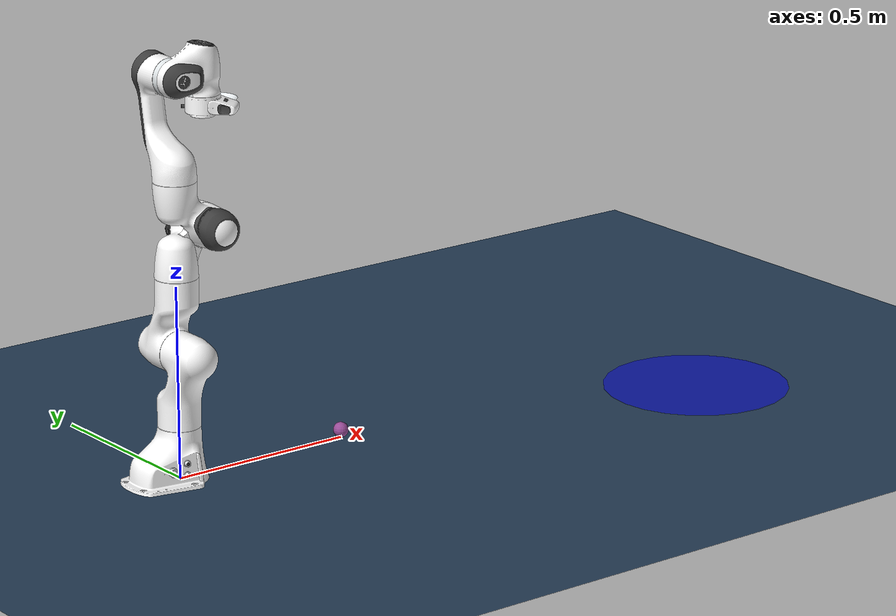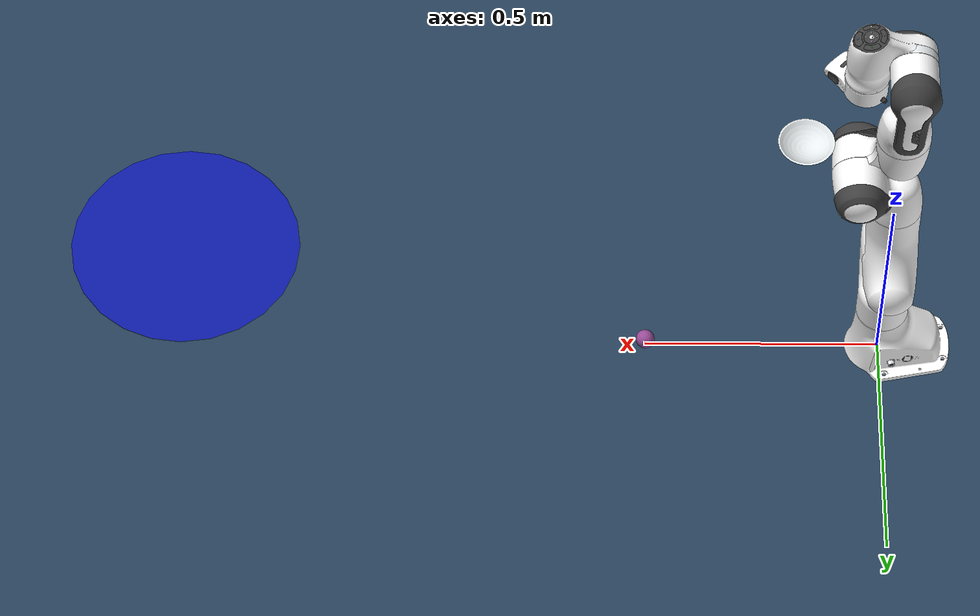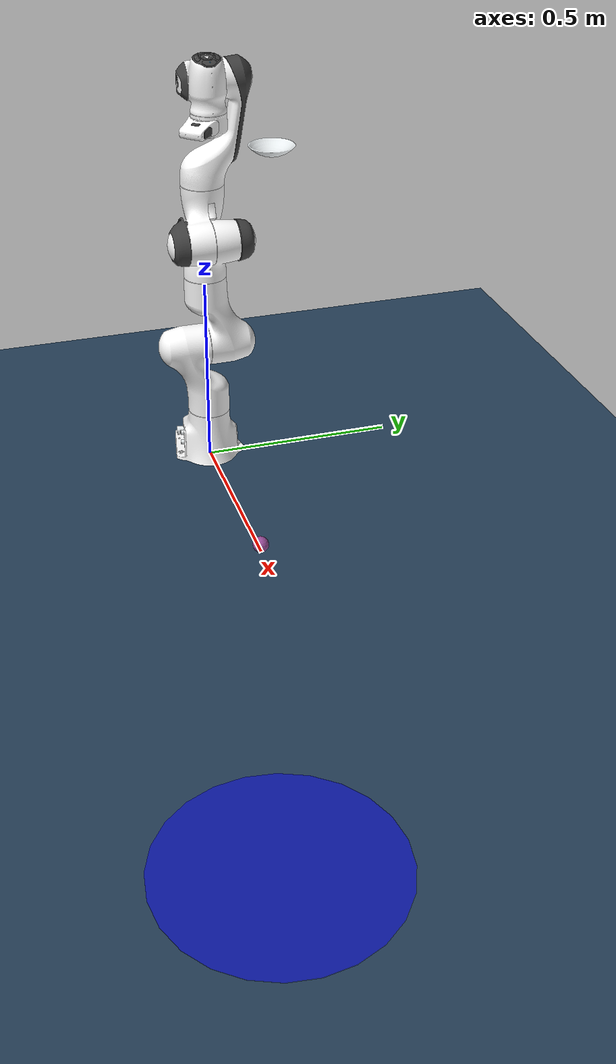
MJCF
<mujoco model="Arena">
  <include file="panda.xml"/>

  <option timestep=".002" noslip_iterations="5" noslip_tolerance="0"/>

  <statistic center="0.3 0 0.4" extent=".8"/>

  <visual>
    <headlight diffuse=".4 .4 .4" ambient=".5 .5 .5"/>
    <global azimuth="160" elevation="-20" offheight="128" offwidth="128"/>
    <quality offsamples="8"/>
  </visual>

  <asset>
    <texture type="skybox" builtin="gradient" rgb1=".3 .5 .7" rgb2="0 0 0" width="32" height="512"/>
    <texture name="grid" type="2d" builtin="checker" width="512" height="512" rgb1=".1 .2 .3" rgb2=".2 .3 .4"/>
    <material name="grid" texture="grid" texrepeat="2 2" texuniform="true" reflectance="0"/>
  </asset>

  <worldbody>
    <camera name="front" pos="1.3 0.0 0.7" quat="0.5963678 0.3799282 0.3799282 0.5963678" fovy="45"/>
    <light pos="0 0 3" dir="0 0 -1" diffuse="1 1 1" specular=".3 .3 .3"/>
    <light pos="0 -.5 .4" mode="targetbodycom" target="block" diffuse=".8 .8 .8" specular=".3 .3 .3"/>

    <geom name="floor" size="3 3 0.01" type="plane" material="grid"/>

    <body name="block" pos="0.5 0 .02">
      <freejoint name="block"/>
      <!-- Changed from box to sphere; size now a single radius -->
      <geom name="block" type="sphere" size=".02" mass="0.001" rgba=".6 .3 .6 1"/>
    </body>

    <body name="target" pos=".15 0 .5" quat="0 1 0 0" mocap="true">
      <geom name="target" type="box" size=".03 .03 .03" contype="0" conaffinity="0" rgba=".6 .3 .3 0"/>
    </body>

    <site name="visual_circle" type="cylinder"
          size="0.25 0.001"
          pos="1.5 -0.25 0"
          rgba="0 0 1 0.5"/>
  </worldbody>

  <sensor>
    <framepos name="block_pos" objtype="geom" objname="block"/>
    <framequat name="block_quat" objtype="geom" objname="block"/>
  </sensor>

  <contact>
    <pair name="block_floor" geom1="block" geom2="floor"/>
  </contact>
</mujoco>

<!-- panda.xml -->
<mujoco model="panda">
  <compiler angle="radian" autolimits="true"/>

  <default>
    <default class="panda">
      <joint armature="0.1" damping="1" axis="0 0 1" range="-2.8973 2.8973"/>
      <default class="panda/visual">
        <geom type="mesh" contype="0" conaffinity="0" group="2"/>
      </default>
      <default class="panda/collision">
        <geom type="mesh" group="3"/>
      </default>
      <site size="0.001" rgba="0.5 0.5 0.5 0.3" group="4"/>
    </default>
    <default class="2f85">
      <mesh scale="0.001 0.001 0.001"/>
      <general biastype="affine"/>
      <site type="sphere" rgba="0.9 0.9 0.9 1" size="0.005" group="4"/>
      <joint axis="1 0 0"/>
      <default class="driver">
        <joint range="0 0.8" armature="0.005" damping="0.1" solimplimit="0.95 0.99 0.001" solreflimit="0.005 1"/>
      </default>
      <default class="follower">
        <joint range="-0.872664 0.872664" pos="0 -0.018 0.0065" solimplimit="0.95 0.99 0.001" solreflimit="0.005 1"/>
      </default>
      <default class="spring_link">
        <joint range="-0.29670597283 0.8" stiffness="0.05" springref="2.62" damping="0.00125"/>
      </default>
      <default class="coupler">
        <joint range="-1.57 0" solimplimit="0.95 0.99 0.001" solreflimit="0.005 1"/>
      </default>
      <default class="2f85/visual">
        <geom type="mesh" contype="0" conaffinity="0" group="2"/>
      </default>
      <default class="2f85/collision">
        <geom type="mesh" group="3"/>
        <default class="pad_box1">
          <geom mass="0" type="box" pos="0 -0.0026 0.028125" size="0.011 0.004 0.009375" friction="0.7"
            solimp="0.95 0.99 0.001" solref="0.004 1" priority="1" rgba="0.55 0.55 0.55 1"/>
        </default>
        <default class="pad_box2">
          <geom mass="0" type="box" pos="0 -0.0026 0.009375" size="0.011 0.004 0.009375" friction="0.6"
            solimp="0.95 0.99 0.001" solref="0.004 1" priority="1" rgba="0.45 0.45 0.45 1"/>
        </default>
      </default>
    </default>
  </default>

  <asset>
    <material name="white" rgba="1 1 1 1"/>
    <material name="off_white" rgba="0.901961 0.921569 0.929412 1"/>
    <material name="dark_grey" rgba="0.25 0.25 0.25 1"/>
    <material name="green" rgba="0 1 0 1"/>
    <material name="light_blue" rgba="0.039216 0.541176 0.780392 1"/>
    <material name="metal" rgba="0.58 0.58 0.58 1"/>
    <material name="silicone" rgba="0.1882 0.1882 0.1882 1"/>
    <material name="gray" rgba="0.4627 0.4627 0.4627 1"/>
    <material name="black" rgba="0.149 0.149 0.149 1"/>

    <mesh name="link0_c" file="franka_emika_panda/assets/link0.stl"/>
    <mesh name="link1_c" file="franka_emika_panda/assets/link1.stl"/>
    <mesh name="link2_c" file="franka_emika_panda/assets/link2.stl"/>
    <mesh name="link3_c" file="franka_emika_panda/assets/link3.stl"/>
    <mesh name="link4_c" file="franka_emika_panda/assets/link4.stl"/>
    <mesh name="link5_c0" file="franka_emika_panda/assets/link5_collision_0.obj"/>
    <mesh name="link5_c1" file="franka_emika_panda/assets/link5_collision_1.obj"/>
    <mesh name="link5_c2" file="franka_emika_panda/assets/link5_collision_2.obj"/>
    <mesh name="link6_c" file="franka_emika_panda/assets/link6.stl"/>
    <mesh name="link7_c" file="franka_emika_panda/assets/link7.stl"/>
    <mesh name="hand_c0" file="franka_emika_panda/assets/ball_thrower_part0.stl" scale="0.0005 0.0005 0.0005"/>
    <mesh name="hand_c1" file="franka_emika_panda/assets/ball_thrower_part1.stl" scale="0.0005 0.0005 0.0005"/>
    <mesh name="hand_c2" file="franka_emika_panda/assets/ball_thrower_part2.stl" scale="0.0005 0.0005 0.0005"/>
    <mesh name="hand_c3" file="franka_emika_panda/assets/ball_thrower_part3.stl" scale="0.0005 0.0005 0.0005"/>
    <mesh name="hand_c4" file="franka_emika_panda/assets/ball_thrower_part4.stl" scale="0.0005 0.0005 0.0005"/>
    <mesh name="hand_c5" file="franka_emika_panda/assets/ball_thrower_part5.stl" scale="0.0005 0.0005 0.0005"/>
    <mesh name="hand_c6" file="franka_emika_panda/assets/ball_thrower_part6.stl" scale="0.0005 0.0005 0.0005"/>
    <mesh name="hand_c7" file="franka_emika_panda/assets/ball_thrower_part7.stl" scale="0.0005 0.0005 0.0005"/>
    <mesh name="hand_c8" file="franka_emika_panda/assets/ball_thrower_part8.stl" scale="0.0005 0.0005 0.0005"/>
    <mesh name="hand_c9" file="franka_emika_panda/assets/ball_thrower_part9.stl" scale="0.0005 0.0005 0.0005"/>
    <mesh name="hand_c10" file="franka_emika_panda/assets/ball_thrower_part10.stl" scale="0.0005 0.0005 0.0005"/>
    <mesh name="hand_c11" file="franka_emika_panda/assets/ball_thrower_part11.stl" scale="0.0005 0.0005 0.0005"/>
    <mesh name="hand_c12" file="franka_emika_panda/assets/ball_thrower_part12.stl" scale="0.0005 0.0005 0.0005"/>
    <mesh name="hand_c13" file="franka_emika_panda/assets/ball_thrower_part13.stl" scale="0.0005 0.0005 0.0005"/>
    <mesh name="hand_c14" file="franka_emika_panda/assets/ball_thrower_part14.stl" scale="0.0005 0.0005 0.0005"/>
    <mesh name="hand_c15" file="franka_emika_panda/assets/ball_thrower_part15.stl" scale="0.0005 0.0005 0.0005"/>

    <mesh file="franka_emika_panda/assets/link0_0.obj"/>
    <mesh file="franka_emika_panda/assets/link0_1.obj"/>
    <mesh file="franka_emika_panda/assets/link0_2.obj"/>
    <mesh file="franka_emika_panda/assets/link0_3.obj"/>
    <mesh file="franka_emika_panda/assets/link0_4.obj"/>
    <mesh file="franka_emika_panda/assets/link0_5.obj"/>
    <mesh file="franka_emika_panda/assets/link0_7.obj"/>
    <mesh file="franka_emika_panda/assets/link0_8.obj"/>
    <mesh file="franka_emika_panda/assets/link0_9.obj"/>
    <mesh file="franka_emika_panda/assets/link0_10.obj"/>
    <mesh file="franka_emika_panda/assets/link0_11.obj"/>
    <mesh file="franka_emika_panda/assets/link1.obj"/>
    <mesh file="franka_emika_panda/assets/link2.obj"/>
    <mesh file="franka_emika_panda/assets/link3_0.obj"/>
    <mesh file="franka_emika_panda/assets/link3_1.obj"/>
    <mesh file="franka_emika_panda/assets/link3_2.obj"/>
    <mesh file="franka_emika_panda/assets/link3_3.obj"/>
    <mesh file="franka_emika_panda/assets/link4_0.obj"/>
    <mesh file="franka_emika_panda/assets/link4_1.obj"/>
    <mesh file="franka_emika_panda/assets/link4_2.obj"/>
    <mesh file="franka_emika_panda/assets/link4_3.obj"/>
    <mesh file="franka_emika_panda/assets/link5_0.obj"/>
    <mesh file="franka_emika_panda/assets/link5_1.obj"/>
    <mesh file="franka_emika_panda/assets/link5_2.obj"/>
    <mesh file="franka_emika_panda/assets/link6_0.obj"/>
    <mesh file="franka_emika_panda/assets/link6_1.obj"/>
    <mesh file="franka_emika_panda/assets/link6_2.obj"/>
    <mesh file="franka_emika_panda/assets/link6_3.obj"/>
    <mesh file="franka_emika_panda/assets/link6_4.obj"/>
    <mesh file="franka_emika_panda/assets/link6_5.obj"/>
    <mesh file="franka_emika_panda/assets/link6_6.obj"/>
    <mesh file="franka_emika_panda/assets/link6_7.obj"/>
    <mesh file="franka_emika_panda/assets/link6_8.obj"/>
    <mesh file="franka_emika_panda/assets/link6_9.obj"/>
    <mesh file="franka_emika_panda/assets/link6_10.obj"/>
    <mesh file="franka_emika_panda/assets/link6_11.obj"/>
    <mesh file="franka_emika_panda/assets/link6_12.obj"/>
    <mesh file="franka_emika_panda/assets/link6_13.obj"/>
    <mesh file="franka_emika_panda/assets/link6_14.obj"/>
    <mesh file="franka_emika_panda/assets/link6_15.obj"/>
    <mesh file="franka_emika_panda/assets/link6_16.obj"/>
    <mesh file="franka_emika_panda/assets/link7_0.obj"/>
    <mesh file="franka_emika_panda/assets/link7_1.obj"/>
    <mesh file="franka_emika_panda/assets/link7_2.obj"/>
    <mesh file="franka_emika_panda/assets/link7_3.obj"/>
    <mesh file="franka_emika_panda/assets/link7_4.obj"/>
    <mesh file="franka_emika_panda/assets/link7_5.obj"/>
    <mesh file="franka_emika_panda/assets/link7_6.obj"/>
    <mesh file="franka_emika_panda/assets/link7_7.obj"/>
    <mesh file="franka_emika_panda/assets/ball_thrower.obj" scale="0.005 0.005 0.005" />

  </asset>

  <worldbody>
    <body name="link0" childclass="panda">
      <inertial mass="0.629769" pos="-0.041018 -0.00014 0.049974"
        fullinertia="0.00315 0.00388 0.004285 8.2904e-7 0.00015 8.2299e-6"/>
      <geom mesh="link0_0" material="off_white" class="panda/visual"/>
      <geom mesh="link0_1" material="dark_grey" class="panda/visual"/>
      <geom mesh="link0_2" material="off_white" class="panda/visual"/>
      <geom mesh="link0_3" material="dark_grey" class="panda/visual"/>
      <geom mesh="link0_4" material="off_white" class="panda/visual"/>
      <geom mesh="link0_5" material="dark_grey" class="panda/visual"/>
      <geom mesh="link0_7" material="white" class="panda/visual"/>
      <geom mesh="link0_8" material="white" class="panda/visual"/>
      <geom mesh="link0_9" material="dark_grey" class="panda/visual"/>
      <geom mesh="link0_10" material="off_white" class="panda/visual"/>
      <geom mesh="link0_11" material="white" class="panda/visual"/>
      <geom mesh="link0_c" class="panda/collision"/>
      <body name="link1" pos="0 0 0.333">
        <inertial mass="4.970684" pos="0.003875 0.002081 -0.04762"
          fullinertia="0.70337 0.70661 0.0091170 -0.00013900 0.0067720 0.019169"/>
        <joint name="joint1"/>
        <site name="joint1"/>
        <geom material="white" mesh="link1" class="panda/visual"/>
        <geom mesh="link1_c" class="panda/collision"/>
        <body name="link2" quat="1 -1 0 0">
          <inertial mass="0.646926" pos="-0.003141 -0.02872 0.003495"
            fullinertia="0.0079620 2.8110e-2 2.5995e-2 -3.925e-3 1.0254e-2 7.04e-4"/>
          <joint name="joint2" range="-1.7628 1.7628"/>
          <site name="joint2"/>
          <geom material="white" mesh="link2" class="panda/visual"/>
          <geom mesh="link2_c" class="panda/collision"/>
          <body name="link3" pos="0 -0.316 0" quat="1 1 0 0">
            <inertial mass="3.228604" pos="2.7518e-2 3.9252e-2 -6.6502e-2"
              fullinertia="3.7242e-2 3.6155e-2 1.083e-2 -4.761e-3 -1.1396e-2 -1.2805e-2"/>
            <joint name="joint3"/>
            <site name="joint3"/>
            <geom mesh="link3_0" material="white" class="panda/visual"/>
            <geom mesh="link3_1" material="white" class="panda/visual"/>
            <geom mesh="link3_2" material="white" class="panda/visual"/>
            <geom mesh="link3_3" material="dark_grey" class="panda/visual"/>
            <geom mesh="link3_c" class="panda/collision"/>
            <body name="link4" pos="0.0825 0 0" quat="1 1 0 0">
              <inertial mass="3.587895" pos="-5.317e-2 1.04419e-1 2.7454e-2"
                fullinertia="2.5853e-2 1.9552e-2 2.8323e-2 7.796e-3 -1.332e-3 8.641e-3"/>
              <joint name="joint4" range="-3.0718 -0.0698"/>
              <site name="joint4"/>
              <geom mesh="link4_0" material="white" class="panda/visual"/>
              <geom mesh="link4_1" material="white" class="panda/visual"/>
              <geom mesh="link4_2" material="dark_grey" class="panda/visual"/>
              <geom mesh="link4_3" material="white" class="panda/visual"/>
              <geom mesh="link4_c" class="panda/collision"/>
              <body name="link5" pos="-0.0825 0.384 0" quat="1 -1 0 0">
                <inertial mass="1.225946" pos="-1.1953e-2 4.1065e-2 -3.8437e-2"
                  fullinertia="3.5549e-2 2.9474e-2 8.627e-3 -2.117e-3 -4.037e-3 2.29e-4"/>
                <joint name="joint5"/>
                <site name="joint5"/>
                <geom mesh="link5_0" material="dark_grey" class="panda/visual"/>
                <geom mesh="link5_1" material="white" class="panda/visual"/>
                <geom mesh="link5_2" material="white" class="panda/visual"/>
                <geom mesh="link5_c0" class="panda/collision"/>
                <geom mesh="link5_c1" class="panda/collision"/>
                <geom mesh="link5_c2" class="panda/collision"/>
                <body name="link6" quat="1 1 0 0">
                  <inertial mass="1.666555" pos="6.0149e-2 -1.4117e-2 -1.0517e-2"
                    fullinertia="1.964e-3 4.354e-3 5.433e-3 1.09e-4 -1.158e-3 3.41e-4"/>
                  <joint name="joint6" range="-0.0175 3.7525"/>
                  <site name="joint6"/>
                  <geom mesh="link6_0" material="off_white" class="panda/visual"/>
                  <geom mesh="link6_1" material="white" class="panda/visual"/>
                  <geom mesh="link6_2" material="dark_grey" class="panda/visual"/>
                  <geom mesh="link6_3" material="white" class="panda/visual"/>
                  <geom mesh="link6_4" material="white" class="panda/visual"/>
                  <geom mesh="link6_5" material="white" class="panda/visual"/>
                  <geom mesh="link6_6" material="white" class="panda/visual"/>
                  <geom mesh="link6_7" material="light_blue" class="panda/visual"/>
                  <geom mesh="link6_8" material="light_blue" class="panda/visual"/>
                  <geom mesh="link6_9" material="dark_grey" class="panda/visual"/>
                  <geom mesh="link6_10" material="dark_grey" class="panda/visual"/>
                  <geom mesh="link6_11" material="white" class="panda/visual"/>
                  <geom mesh="link6_12" material="green" class="panda/visual"/>
                  <geom mesh="link6_13" material="white" class="panda/visual"/>
                  <geom mesh="link6_14" material="dark_grey" class="panda/visual"/>
                  <geom mesh="link6_15" material="dark_grey" class="panda/visual"/>
                  <geom mesh="link6_16" material="white" class="panda/visual"/>
                  <geom mesh="link6_c" class="panda/collision"/>
                  <body name="link7" pos="0.088 0 0" quat="1 1 0 0">
                    <inertial mass="7.35522e-01" pos="1.0517e-2 -4.252e-3 6.1597e-2"
                      fullinertia="1.2516e-2 1.0027e-2 4.815e-3 -4.28e-4 -1.196e-3 -7.41e-4"/>
                    <joint name="joint7"/>
                    <site name="joint7"/>
                    <geom mesh="link7_0" material="white" class="panda/visual"/>
                    <geom mesh="link7_1" material="dark_grey" class="panda/visual"/>
                    <geom mesh="link7_2" material="dark_grey" class="panda/visual"/>
                    <geom mesh="link7_3" material="dark_grey" class="panda/visual"/>
                    <geom mesh="link7_4" material="dark_grey" class="panda/visual"/>
                    <geom mesh="link7_5" material="dark_grey" class="panda/visual"/>
                    <geom mesh="link7_6" material="dark_grey" class="panda/visual"/>
                    <geom mesh="link7_7" material="white" class="panda/visual"/>
                    <geom mesh="link7_c" class="panda/collision"/>
                    <body name="hand" pos="0.12 -0.12 0.107" quat="0 0.70710678 0.70710678 0">
                      <camera name="handcam_depth" pos="-0.05 0 0" fovy="62" quat="0 1 -1 0"/>
                      <camera name="handcam_rgb" pos="-0.05 0.015 0" fovy="42.5" quat="0 1 -1 0"/>
                      <site name="pinch" pos="0 0 0.145"/>
                      <inertial mass="0.00073" pos="-0.01 0 0.03" diaginertia="0.001 0.0025 0.0017"/>
                      <geom mesh="ball_thrower" material="off_white" class="panda/visual" />
                      <geom mesh="hand_c0" class="panda/collision"/>
                      <geom mesh="hand_c1" class="panda/collision"/>
                      <geom mesh="hand_c2" class="panda/collision"/>
                      <geom mesh="hand_c3" class="panda/collision"/>
                      <geom mesh="hand_c4" class="panda/collision"/>
                      <geom mesh="hand_c5" class="panda/collision"/>
                      <geom mesh="hand_c6" class="panda/collision"/>
                      <geom mesh="hand_c7" class="panda/collision"/>
                      <geom mesh="hand_c8" class="panda/collision"/>
                      <geom mesh="hand_c9" class="panda/collision"/>
                      <geom mesh="hand_c10" class="panda/collision"/>
                      <geom mesh="hand_c11" class="panda/collision"/>
                      <geom mesh="hand_c12" class="panda/collision"/>
                      <geom mesh="hand_c13" class="panda/collision"/>
                      <geom mesh="hand_c14" class="panda/collision"/>
                      <geom mesh="hand_c15" class="panda/collision"/>
                    </body>
                  </body>
                </body>
              </body>
            </body>
          </body>
        </body>
      </body>
    </body>
  </worldbody>

  <actuator>
    <motor class="panda" name="actuator1" joint="joint1" ctrlrange="-87 87" />
    <motor class="panda" name="actuator2" joint="joint2" ctrlrange="-87 87" />
    <motor class="panda" name="actuator3" joint="joint3" ctrlrange="-87 87" />
    <motor class="panda" name="actuator4" joint="joint4" ctrlrange="-87 87" />
    <motor class="panda" name="actuator5" joint="joint5" ctrlrange="-12 12" />
    <motor class="panda" name="actuator6" joint="joint6" ctrlrange="-12 12" />
    <motor class="panda" name="actuator7" joint="joint7" ctrlrange="-12 12" />
  </actuator>

  <sensor>
    <jointpos name="panda/joint1_pos" joint="joint1"/>
    <jointpos name="panda/joint2_pos" joint="joint2"/>
    <jointpos name="panda/joint3_pos" joint="joint3"/>
    <jointpos name="panda/joint4_pos" joint="joint4"/>
    <jointpos name="panda/joint5_pos" joint="joint5"/>
    <jointpos name="panda/joint6_pos" joint="joint6"/>
    <jointpos name="panda/joint7_pos" joint="joint7"/>

    <jointvel name="panda/joint1_vel" joint="joint1"/>
    <jointvel name="panda/joint2_vel" joint="joint2"/>
    <jointvel name="panda/joint3_vel" joint="joint3"/>
    <jointvel name="panda/joint4_vel" joint="joint4"/>
    <jointvel name="panda/joint5_vel" joint="joint5"/>
    <jointvel name="panda/joint6_vel" joint="joint6"/>
    <jointvel name="panda/joint7_vel" joint="joint7"/>

    <torque name="panda/joint1_torque" site="joint1"/>
    <torque name="panda/joint2_torque" site="joint2"/>
    <torque name="panda/joint3_torque" site="joint3"/>
    <torque name="panda/joint4_torque" site="joint4"/>
    <torque name="panda/joint5_torque" site="joint5"/>
    <torque name="panda/joint6_torque" site="joint6"/>
    <torque name="panda/joint7_torque" site="joint7"/>

    <framepos name="panda/hand_pos" objtype="body" objname="hand"/>
    <framequat name="panda/hand_quat" objtype="body" objname="hand"/>
    <framelinvel name="panda/hand_vel" objtype="body" objname="hand"/>
    <frameangvel name="panda/hand_angvel" objtype="body" objname="hand"/>

  </sensor>
</mujoco>
